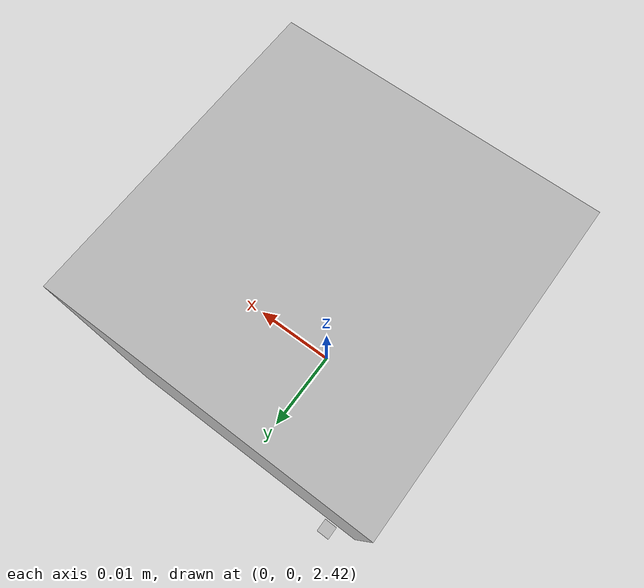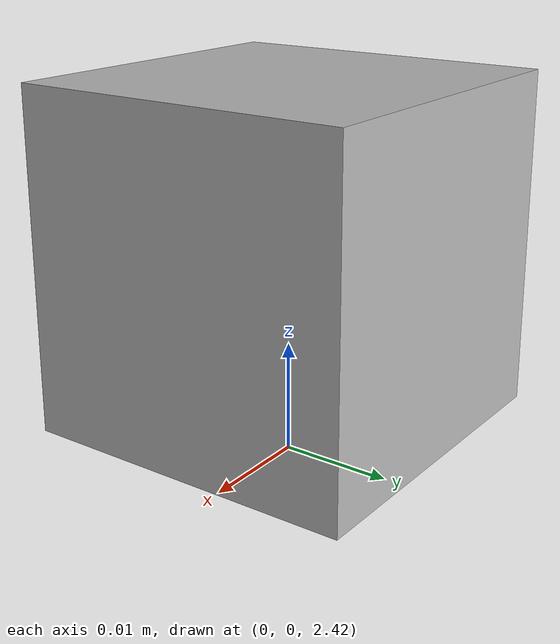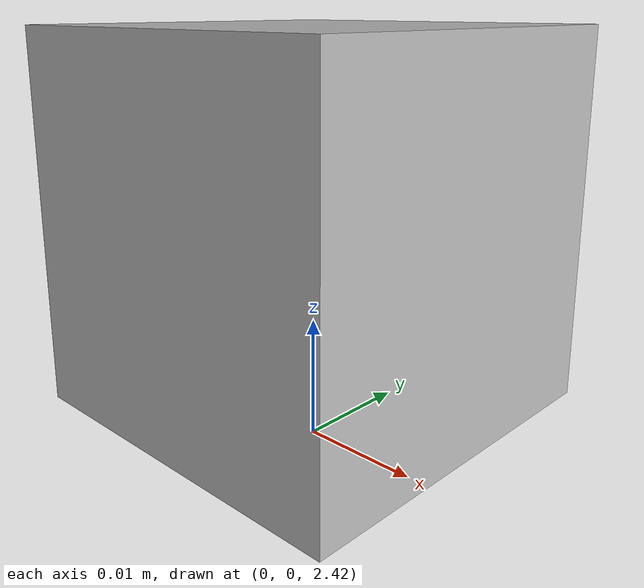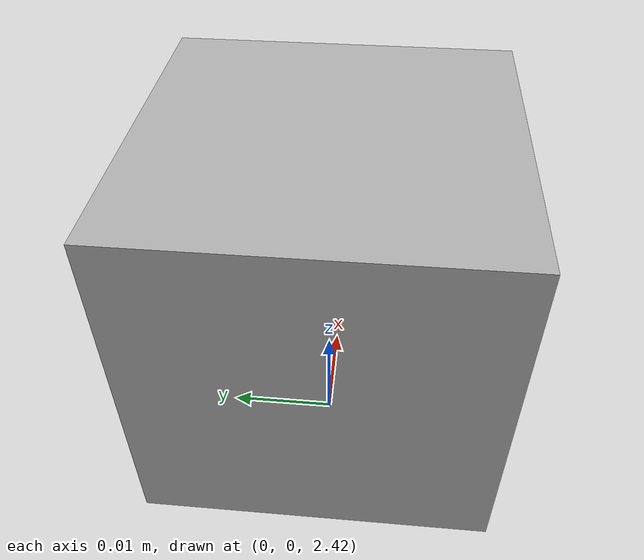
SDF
<?xml version="1.0"?>
<sdf version="1.6">
  <world name="default">
    <plugin
      filename="gz-sim-physics-system"
      name="gz::sim::systems::Physics">
    </plugin>
    <plugin
      filename="gz-sim-user-commands-system"
      name="gz::sim::systems::UserCommands">
    </plugin>
    <plugin
      filename="gz-sim-scene-broadcaster-system"
      name="gz::sim::systems::SceneBroadcaster">
    </plugin>
    <plugin
      filename="gz-sim-sensors-system"
      name="gz::sim::systems::Sensors">
      <render_engine>ogre2</render_engine>
    </plugin>
    <plugin
      filename="gz-sim-imu-system"
      name="gz::sim::systems::Imu">
    </plugin>

    <scene>
      <grid>false</grid>
      <ambient>0.1 0.1 0.2</ambient>
      <background>0.05 0.05 0.1</background>
      <shadows>false</shadows>
    </scene>

    <include>
      <uri>model://sun</uri>
    </include>

    <model name="ground_plane">
      <static>true</static>
      <link name="link">
        <collision name="collision">
          <geometry>
            <plane>
              <normal>0 0 1</normal>
              <size>80 80</size>
            </plane>
          </geometry>
        </collision>
        <visual name="visual">
          <geometry>
            <plane>
              <normal>0 0 1</normal>
              <size>1000 1000</size>
            </plane>
          </geometry>
          <material>
            <ambient>0.8 0.8 0.8 1</ambient>
            <diffuse>0.8 0.8 0.8 1</diffuse>
            <specular>0.8 0.8 0.8 1</specular>
          </material>
        </visual>
      </link>
    </model>

    <include>
      <name>arena_terrain</name>
      <pose>0 0 0.001 0 0 -1.5708</pose>
      <uri>model://arena_terrain</uri>
    </include>

    <include>
      <name>camera_box</name>
      <pose>0 0 2.4384 0 1.57 0</pose>
      <uri>model://camera_box</uri>
    </include>

  </world>
</sdf>

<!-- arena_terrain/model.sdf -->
<sdf version='1.8'>
  <model name='arena_terrain'>
    <static>1</static>
    <link name="link">
      <collision name="floor_collision">
        <geometry>
          <plane>
            <normal>0 0 1</normal>
            <size>2.4384 2.4384</size>
          </plane>
        </geometry>
        <surface>
          <friction>
            <ode>
              <mu>100</mu>
              <mu2>50</mu2>
            </ode>
          </friction>
        </surface>
      </collision>

      <visual name="visual">
        <cast_shadows>false</cast_shadows>
        <geometry>
          <mesh>
            <uri>model://arena_terrain/meshes/arena_terrain.dae</uri>
            <scale>5 5 1</scale>

          </mesh>
        </geometry>
      </visual>
    </link>
  </model>
</sdf>

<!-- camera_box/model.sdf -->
<sdf version="1.6">
  <model name="camera_box">
    <static>false</static>
    <link name="camera_link">
      <pose>0 0 0 0 0 1.5708</pose>
      <inertial>
        <mass>0.0</mass>
        <inertia>
          <ixx>0.000</ixx>
          <ixy>0</ixy>
          <ixz>0</ixz>
          <iyy>0.000</iyy>
          <iyz>0</iyz>
          <izz>0.000</izz>
        </inertia>
      </inertial>
      <visual name="camera_visual">
        <geometry>
          <box>
            <size>0.03 0.03 0.03</size>
          </box>
        </geometry>
      </visual>
      <sensor name="downward_camera" type="camera">
        <pose>0 0 0 0 0 0</pose>
        <camera>
          <horizontal_fov>1.3962634</horizontal_fov>
          <image>
            <width>640</width>
            <height>480</height>
            <format>R8G8B8</format>
          </image>
          <clip>
            <near>0.1</near>
            <far>100</far>
          </clip>
        </camera>
        <always_on>1</always_on>
        <update_rate>30</update_rate>
        <visualize>false</visualize>
        <plugin name="camera_controller" filename="libgazebo_ros_camera.so">
          <robotNamespace/>
          <cameraName>downward_camera</cameraName>
          <imageTopicName>image_raw</imageTopicName>
          <cameraInfoTopicName>camera_info</cameraInfoTopicName>
          <frameName>camera_link</frameName>
        </plugin>
      </sensor>
    </link>
  </model>
</sdf>
